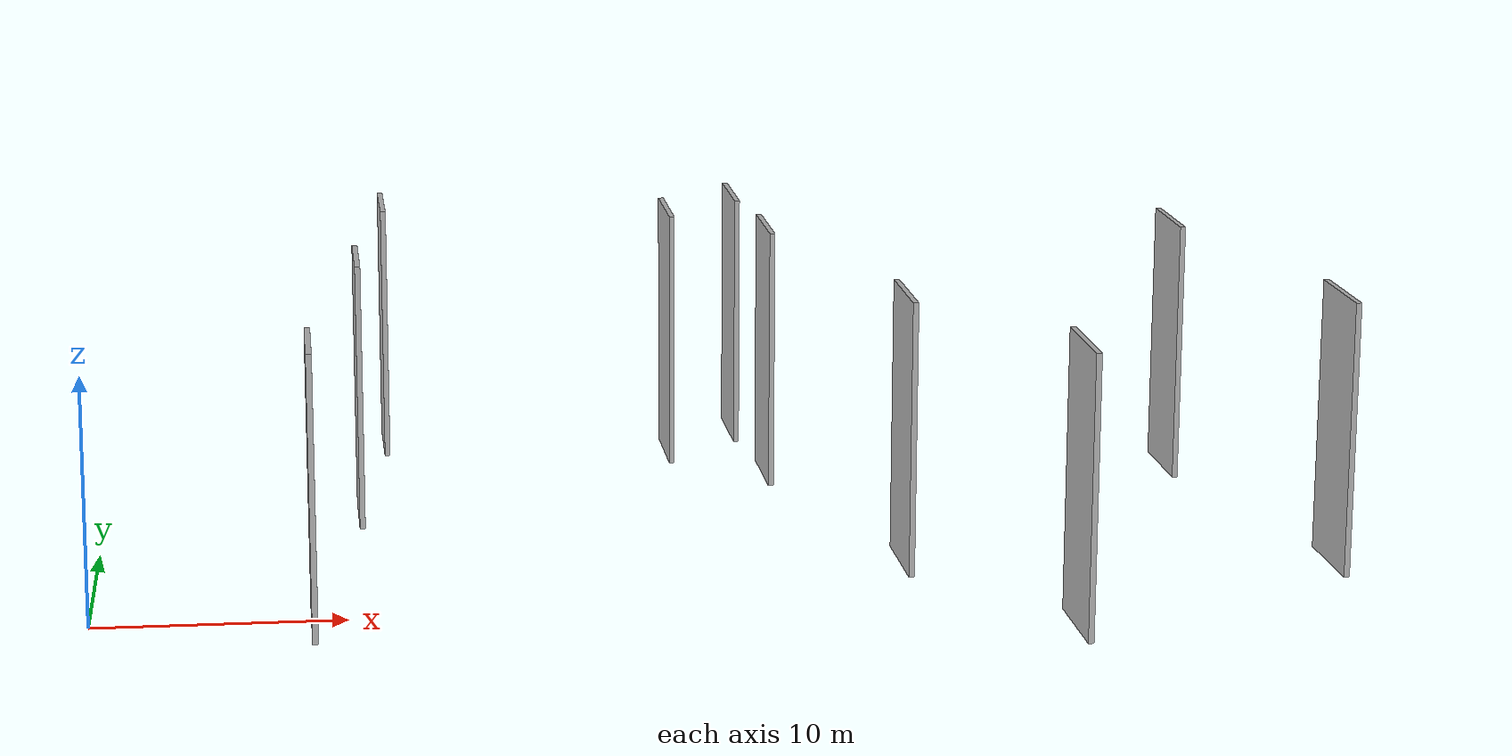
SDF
<sdf version="1.6">
 <world name="default">
  <scene>
   <sky><clouds><speed>12</speed></clouds></sky>
   <ambient>0.4 0.4 0.4 1</ambient>
   <background>0.7 0.7 0.7 1</background>
   <shadows>1</shadows>
  </scene>
  <gravity>0 0 -9.8066</gravity>
  <magnetic_field>6e-06 2.3e-05 -4.2e-05</magnetic_field>
  <physics default="0" name="default_physics" type="ode">
   <ode>
    <solver>
     <type>quick</type>
     <iters>10</iters>
     <sor>1.0</sor>
     <use_dynamic_moi_rescaling>0</use_dynamic_moi_rescaling>
    </solver>
    <constraints>
     <cfm>0</cfm>
     <erp>0.2</erp>
     <contact_max_correcting_vel>100</contact_max_correcting_vel>
     <contact_surface_layer>0.001</contact_surface_layer>
    </constraints>
   </ode>
   <max_step_size>0.004</max_step_size>
   <real_time_factor>1</real_time_factor>
   <real_time_update_rate>250</real_time_update_rate>
  </physics>
  <light name="sun" type="directional">
   <pose>0 0 10 0 0 0</pose>
   <diffuse>0.8 0.8 0.8 1</diffuse>
   <specular>0.2 0.2 0.2 1</specular>
   <attenuation>
    <range>1000</range>
    <constant>0.9</constant>
    <linear>0.01</linear>
    <quadratic>0.001</quadratic>
   </attenuation>
   <direction>-0.5 0.1 -0.9</direction>
  </light>
  <model name="grey_wall_1">
   <static>1</static>
   <pose>45.1733 -12.9176 5.0 0.000000 0.000000 1.570796</pose>
   <link name="link">
    <pose>0 0 5.00 0 0 0</pose>
    <collision name="collision"><geometry><box><size>4.00 0.2 10.00</size></box></geometry></collision>
    <visual name="visual">
     <cast_shadows>0</cast_shadows>
     <geometry><box><size>4.00 0.2 10.00</size></box></geometry>
     <material>
      <script>
       <uri>model://HANNAS_wall/materials/scripts</uri>
       <uri>model://HANNAS_wall/materials/textures</uri>
       <name>vrc/HANNAS_wall</name>
      </script>
     </material>
    </visual>
   </link>
  </model>
  <model name="grey_wall_2">
   <static>1</static>
   <pose>42.4522 1.2098 5.0 0.000000 0.000000 1.570796</pose>
   <link name="link">
    <pose>0 0 5.00 0 0 0</pose>
    <collision name="collision"><geometry><box><size>4.00 0.2 10.00</size></box></geometry></collision>
    <visual name="visual">
     <cast_shadows>0</cast_shadows>
     <geometry><box><size>4.00 0.2 10.00</size></box></geometry>
     <material>
      <script>
       <uri>model://HANNAS_wall/materials/scripts</uri>
       <uri>model://HANNAS_wall/materials/textures</uri>
       <name>vrc/HANNAS_wall</name>
      </script>
     </material>
    </visual>
   </link>
  </model>
  <model name="grey_wall_3">
   <static>1</static>
   <pose>26.0077 8.6166 5.0 0.000000 0.000000 1.570796</pose>
   <link name="link">
    <pose>0 0 5.00 0 0 0</pose>
    <collision name="collision"><geometry><box><size>4.00 0.2 10.00</size></box></geometry></collision>
    <visual name="visual">
     <cast_shadows>0</cast_shadows>
     <geometry><box><size>4.00 0.2 10.00</size></box></geometry>
     <material>
      <script>
       <uri>model://HANNAS_wall/materials/scripts</uri>
       <uri>model://HANNAS_wall/materials/textures</uri>
       <name>vrc/HANNAS_wall</name>
      </script>
     </material>
    </visual>
   </link>
  </model>
  <model name="grey_wall_4">
   <static>1</static>
   <pose>26.4893 1.7269 5.0 0.000000 0.000000 1.570796</pose>
   <link name="link">
    <pose>0 0 5.00 0 0 0</pose>
    <collision name="collision"><geometry><box><size>4.00 0.2 10.00</size></box></geometry></collision>
    <visual name="visual">
     <cast_shadows>0</cast_shadows>
     <geometry><box><size>4.00 0.2 10.00</size></box></geometry>
     <material>
      <script>
       <uri>model://HANNAS_wall/materials/scripts</uri>
       <uri>model://HANNAS_wall/materials/textures</uri>
       <name>vrc/HANNAS_wall</name>
      </script>
     </material>
    </visual>
   </link>
  </model>
  <model name="grey_wall_5">
   <static>1</static>
   <pose>34.4029 -19.4782 5.0 0.000000 0.000000 1.570796</pose>
   <link name="link">
    <pose>0 0 5.00 0 0 0</pose>
    <collision name="collision"><geometry><box><size>4.00 0.2 10.00</size></box></geometry></collision>
    <visual name="visual">
     <cast_shadows>0</cast_shadows>
     <geometry><box><size>4.00 0.2 10.00</size></box></geometry>
     <material>
      <script>
       <uri>model://HANNAS_wall/materials/scripts</uri>
       <uri>model://HANNAS_wall/materials/textures</uri>
       <name>vrc/HANNAS_wall</name>
      </script>
     </material>
    </visual>
   </link>
  </model>
  <model name="grey_wall_6">
   <static>1</static>
   <pose>11.7858 7.8791 5.0 0.000000 0.000000 1.570796</pose>
   <link name="link">
    <pose>0 0 5.00 0 0 0</pose>
    <collision name="collision"><geometry><box><size>4.00 0.2 10.00</size></box></geometry></collision>
    <visual name="visual">
     <cast_shadows>0</cast_shadows>
     <geometry><box><size>4.00 0.2 10.00</size></box></geometry>
     <material>
      <script>
       <uri>model://HANNAS_wall/materials/scripts</uri>
       <uri>model://HANNAS_wall/materials/textures</uri>
       <name>vrc/HANNAS_wall</name>
      </script>
     </material>
    </visual>
   </link>
  </model>
  <model name="grey_wall_7">
   <static>1</static>
   <pose>29.7726 -11.1666 5.0 0.000000 0.000000 1.570796</pose>
   <link name="link">
    <pose>0 0 5.00 0 0 0</pose>
    <collision name="collision"><geometry><box><size>4.00 0.2 10.00</size></box></geometry></collision>
    <visual name="visual">
     <cast_shadows>0</cast_shadows>
     <geometry><box><size>4.00 0.2 10.00</size></box></geometry>
     <material>
      <script>
       <uri>model://HANNAS_wall/materials/scripts</uri>
       <uri>model://HANNAS_wall/materials/textures</uri>
       <name>vrc/HANNAS_wall</name>
      </script>
     </material>
    </visual>
   </link>
  </model>
  <model name="grey_wall_8">
   <static>1</static>
   <pose>10.4986 -2.7327 5.0 0.000000 0.000000 1.570796</pose>
   <link name="link">
    <pose>0 0 5.00 0 0 0</pose>
    <collision name="collision"><geometry><box><size>4.00 0.2 10.00</size></box></geometry></collision>
    <visual name="visual">
     <cast_shadows>0</cast_shadows>
     <geometry><box><size>4.00 0.2 10.00</size></box></geometry>
     <material>
      <script>
       <uri>model://HANNAS_wall/materials/scripts</uri>
       <uri>model://HANNAS_wall/materials/textures</uri>
       <name>vrc/HANNAS_wall</name>
      </script>
     </material>
    </visual>
   </link>
  </model>
  <model name="grey_wall_9">
   <static>1</static>
   <pose>23.0306 5.5695 5.0 0.000000 0.000000 1.570796</pose>
   <link name="link">
    <pose>0 0 5.00 0 0 0</pose>
    <collision name="collision"><geometry><box><size>4.00 0.2 10.00</size></box></geometry></collision>
    <visual name="visual">
     <cast_shadows>0</cast_shadows>
     <geometry><box><size>4.00 0.2 10.00</size></box></geometry>
     <material>
      <script>
       <uri>model://HANNAS_wall/materials/scripts</uri>
       <uri>model://HANNAS_wall/materials/textures</uri>
       <name>vrc/HANNAS_wall</name>
      </script>
     </material>
    </visual>
   </link>
  </model>
  <model name="grey_wall_10">
   <static>1</static>
   <pose>8.5341 -16.7090 5.0 0.000000 0.000000 1.570796</pose>
   <link name="link">
    <pose>0 0 5.00 0 0 0</pose>
    <collision name="collision"><geometry><box><size>4.00 0.2 10.00</size></box></geometry></collision>
    <visual name="visual">
     <cast_shadows>0</cast_shadows>
     <geometry><box><size>4.00 0.2 10.00</size></box></geometry>
     <material>
      <script>
       <uri>model://HANNAS_wall/materials/scripts</uri>
       <uri>model://HANNAS_wall/materials/textures</uri>
       <name>vrc/HANNAS_wall</name>
      </script>
     </material>
    </visual>
   </link>
  </model>
 </world>
</sdf>
